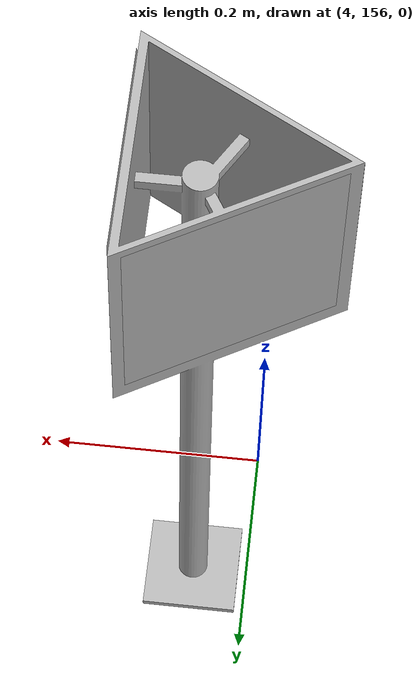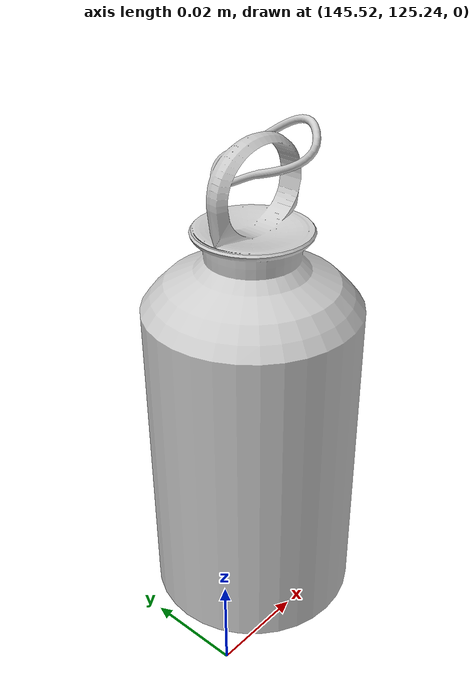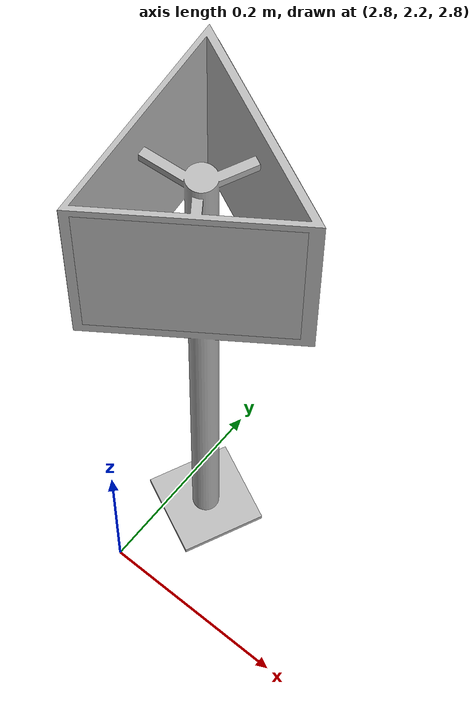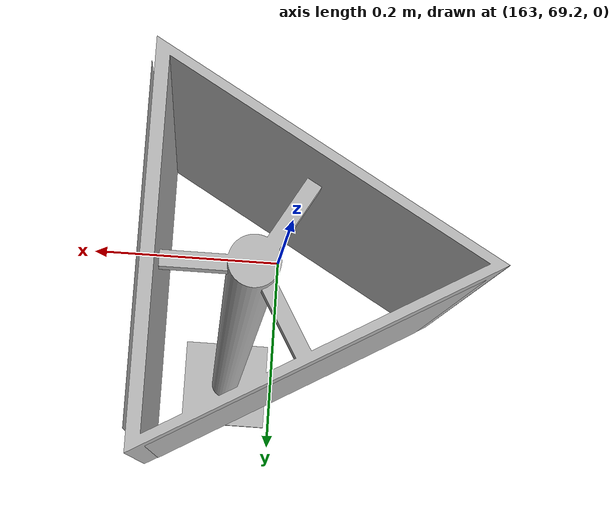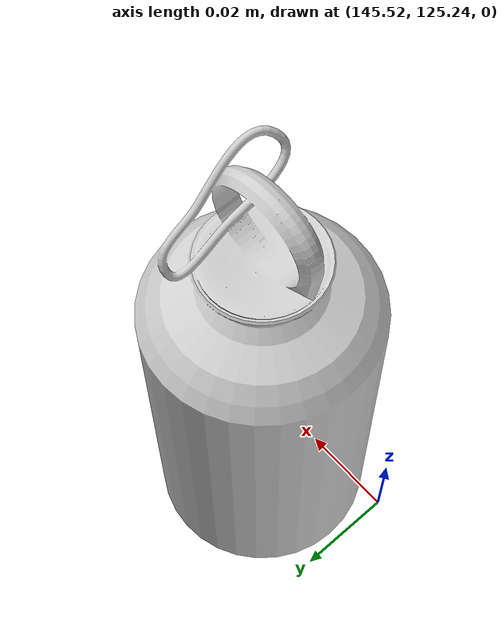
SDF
<sdf version="1.7">
 <world name="default">
  <plugin name="gazebo_ros_factory" filename="libgazebo_ros_factory.so"/>
  <gravity>0 0 -9.8</gravity>
  <magnetic_field>6e-06 2.3e-05 -4.2e-05</magnetic_field>
  <atmosphere type="adiabatic"/>
  <physics type="ode">
   <max_step_size>0.001</max_step_size>
   <real_time_factor>1</real_time_factor>
   <real_time_update_rate>1000</real_time_update_rate>
  </physics>
  <scene><ambient>0.4 0.4 0.4 1</ambient><background>0.7 0.7 0.7 1</background><shadows>1</shadows></scene>
  <audio><device>default</device></audio>
  <spherical_coordinates>
   <surface_model>EARTH_WGS84</surface_model>
   <latitude_deg>0</latitude_deg>
   <longitude_deg>0</longitude_deg>
   <elevation>0</elevation>
   <heading_deg>0</heading_deg>
  </spherical_coordinates>
  <light name="user_directional_light_0" type="directional">
   <pose>-0.182053 -1.69609 1 0 -0 0</pose>
   <diffuse>0.5 0.5 0.5 1</diffuse>
   <specular>0.1 0.1 0.1 1</specular>
   <direction>0.1 0.1 -0.9</direction>
   <attenuation>
    <range>20</range>
    <constant>0.5</constant>
    <linear>0.01</linear>
    <quadratic>0.001</quadratic>
   </attenuation>
   <spot><inner_angle>0</inner_angle><outer_angle>0</outer_angle><falloff>0</falloff></spot>
  </light>
  <model name="aruco_pole_1">
   <pose>4.05171 156.123 0 0 -0 0</pose>
   <static>1</static>
   <link name="body">
    <visual name="pole_visual">
     <geometry><mesh><uri>model://aruco_pole_1/media/pole.dae</uri></mesh></geometry>
    </visual>
    <collision name="collision">
     <geometry><mesh><uri>model://aruco_pole_1/media/pole.dae</uri></mesh></geometry>
    </collision>
    <visual name="aruco_square_1">
     <pose>-0.033734 -0.048977 0.602716 -1.04719 1.57079 3.14159</pose>
     <geometry><mesh><uri>model://aruco_pole_1/media/square.dae</uri></mesh></geometry>
     <material>
      <script>
       <uri>model://aruco_pole_1/materials/scripts</uri>
       <uri>model://aruco_pole_1/materials/textures</uri>
       <name>ArucoTexture</name>
      </script>
     </material>
    </visual>
    <visual name="aruco_square_2">
     <pose>0.057121 0.000381 0.602716 3.14159 1.57079 3.14159</pose>
     <geometry><mesh><uri>model://aruco_pole_1/media/square.dae</uri></mesh></geometry>
     <material>
      <script>
       <uri>model://aruco_pole_1/materials/scripts</uri>
       <uri>model://aruco_pole_1/materials/textures</uri>
       <name>ArucoTexture</name>
      </script>
     </material>
    </visual>
    <visual name="aruco_square_3">
     <pose>-0.031142 0.052622 0.602716 1.04719 1.57079 -3.14159</pose>
     <geometry><mesh><uri>model://aruco_pole_1/media/square.dae</uri></mesh></geometry>
     <material>
      <script>
       <uri>model://aruco_pole_1/materials/scripts</uri>
       <uri>model://aruco_pole_1/materials/textures</uri>
       <name>ArucoTexture</name>
      </script>
     </material>
    </visual>
   </link>
  </model>
  <model name="aruco_pole_2">
   <pose>163.049 69.3359 -0.005014 0 -0 0</pose>
   <static>1</static>
   <link name="body">
    <visual name="pole_visual">
     <geometry><mesh><uri>model://aruco_pole_2/media/pole.dae</uri></mesh></geometry>
    </visual>
    <collision name="collision">
     <geometry><mesh><uri>model://aruco_pole_2/media/pole.dae</uri></mesh></geometry>
    </collision>
    <visual name="aruco_square_1">
     <pose>-0.033734 -0.048977 0.602716 -1.04719 1.57079 3.14159</pose>
     <geometry><mesh><uri>model://aruco_pole_2/media/square.dae</uri></mesh></geometry>
     <material>
      <script>
       <uri>model://aruco_pole_2/materials/scripts</uri>
       <uri>model://aruco_pole_2/materials/textures</uri>
       <name>ArucoTexture</name>
      </script>
     </material>
    </visual>
    <visual name="aruco_square_2">
     <pose>0.057121 0.000381 0.602716 3.14159 1.57079 3.14159</pose>
     <geometry><mesh><uri>model://aruco_pole_2/media/square.dae</uri></mesh></geometry>
     <material>
      <script>
       <uri>model://aruco_pole_2/materials/scripts</uri>
       <uri>model://aruco_pole_2/materials/textures</uri>
       <name>ArucoTexture</name>
      </script>
     </material>
    </visual>
    <visual name="aruco_square_3">
     <pose>-0.031142 0.052622 0.602716 1.04719 1.57079 -3.14159</pose>
     <geometry><mesh><uri>model://aruco_pole_2/media/square.dae</uri></mesh></geometry>
     <material>
      <script>
       <uri>model://aruco_pole_2/materials/scripts</uri>
       <uri>model://aruco_pole_2/materials/textures</uri>
       <name>ArucoTexture</name>
      </script>
     </material>
    </visual>
   </link>
  </model>
  <model name="aruco_pole">
   <pose>2.84285 2.28973 2.84472 0 -0 1.13922</pose>
   <static>1</static>
   <link name="body">
    <visual name="pole_visual">
     <geometry><mesh><uri>model://aruco_pole/media/pole.dae</uri></mesh></geometry>
    </visual>
    <collision name="collision">
     <geometry><mesh><uri>model://aruco_pole/media/pole.dae</uri></mesh></geometry>
    </collision>
    <visual name="aruco_square_1">
     <pose>-0.033734 -0.048977 0.602716 -1.04719 1.57079 3.14159</pose>
     <geometry><mesh><uri>model://aruco_pole/media/square.dae</uri></mesh></geometry>
     <material>
      <script>
       <uri>model://aruco_pole/materials/scripts</uri>
       <uri>model://aruco_pole/materials/textures</uri>
       <name>ArucoTexture</name>
      </script>
     </material>
    </visual>
    <visual name="aruco_square_2">
     <pose>0.057121 0.000381 0.602716 3.14159 1.57079 3.14159</pose>
     <geometry><mesh><uri>model://aruco_pole/media/square.dae</uri></mesh></geometry>
     <material>
      <script>
       <uri>model://aruco_pole/materials/scripts</uri>
       <uri>model://aruco_pole/materials/textures</uri>
       <name>ArucoTexture</name>
      </script>
     </material>
    </visual>
    <visual name="aruco_square_3">
     <pose>-0.031142 0.052622 0.602716 1.04719 1.57079 -3.14159</pose>
     <geometry><mesh><uri>model://aruco_pole/media/square.dae</uri></mesh></geometry>
     <material>
      <script>
       <uri>model://aruco_pole/materials/scripts</uri>
       <uri>model://aruco_pole/materials/textures</uri>
       <name>ArucoTexture</name>
      </script>
     </material>
    </visual>
   </link>
  </model>
  <model name="Bottle">
   <pose>145.543 125.253 0.039226 0 -0 0</pose>
   <static>1</static>
   <link name="body">
    <visual name="visual"><geometry><mesh><uri>model://bottle/media/Bottle.dae</uri></mesh></geometry></visual>
    <collision name="collision">
     <geometry><mesh><uri>model://bottle/media/Bottle.dae</uri></mesh></geometry>
    </collision>
   </link>
  </model>
 </world>
</sdf>
